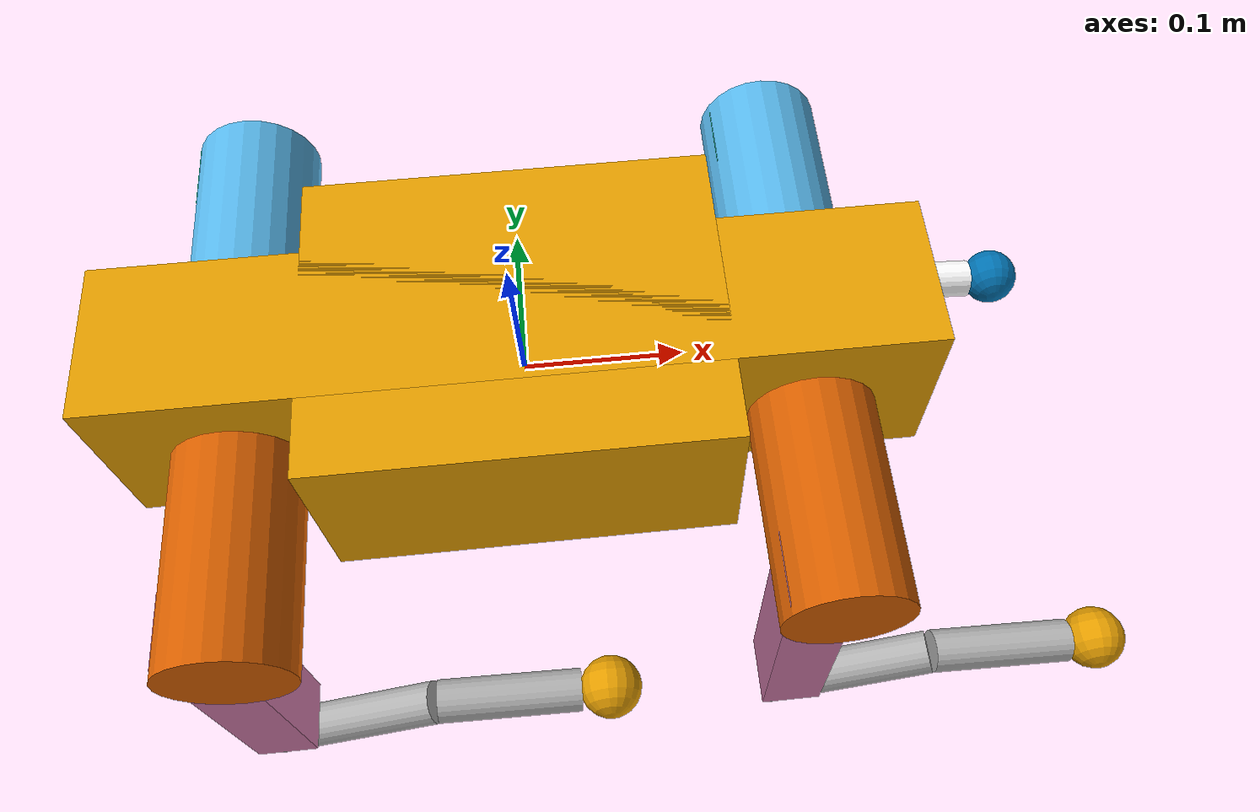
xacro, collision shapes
<?xml version="1.0"?>

<robot name="lite3"
    xmlns:xacro="http://www.ros.org/wiki/xacro">

    <xacro:include filename="$(find Lite3_urdf)/urdf/Lite3.urdf"/>
    <xacro:include filename="$(find Lite3_urdf)/xacro/gazebo.xacro"/>
    <xacro:include filename="$(find Lite3_urdf)/xacro/transmission.xacro"/>

    <link name="imu_link">
        <inertial>
            <origin xyz="0 0 0" rpy="0 0 0" />
            <mass value="0" />
            <inertia ixx="0" ixy="0" ixz="0" iyy="0" iyz="0" izz="0" />
        </inertial>
    </link>
    <joint name="imu_joint" type="fixed">
        <origin xyz="-0.02557 0 0.04232" rpy="0 0 0" />
        <parent link="TORSO" />
        <child link="imu_link" />
        <axis xyz="0 0 0" />
    </joint>

</robot>

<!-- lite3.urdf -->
<robot name="Lite3">
    <mujoco>
        <compiler meshdir="package://Lite3_urdf/meshes/" balanceinertia="false" discardvisual="false" fusestatic="false"/>
    </mujoco>
    <link name="TORSO">
        <inertial>
            <origin/>
            <mass value="5.6056"/>
            <inertia ixx="0.02456" ixy="0" ixz="0" iyy="0.05518" iyz="0" izz="0.07016"/>
        </inertial>
        <visual>
            <geometry>
                <mesh filename="package://Lite3_urdf/meshes/torso.STL"/>
            </geometry>
        </visual>
        <collision>
            <origin xyz="0 0 0.01"/>
            <geometry>
                <box size="0.5 0.1 0.12"/>
            </geometry>
        </collision>
        <collision>
            <origin xyz="0 0 0.01"/>
            <geometry>
                <box size="0.25 0.2 0.12"/>
            </geometry>
        </collision>
    </link>

    <!--!!!!!!!!!!!! Front Left Leg !!!!!!!!!!!!!!!!!!!!!!!!!!!!!!!!!!!!-->

    <link name="FL_HIP">
        <inertial>
            <origin xyz="-0.00601 -0.0066532 0.00034295"/>
            <mass value="0.550"/>
            <inertia ixx="0.0003949" ixy="0" ixz="0" iyy="0.0004028" iyz="0" izz="0.0004472"/>
        </inertial>
        <visual>
            <geometry>
                <mesh filename="package://Lite3_urdf/meshes/hip.STL" scale="1 1 1"/>
            </geometry>
        </visual>
        <collision>
            <origin xyz="0 0.05 0" rpy="1.57079632 0 0"/>
            <geometry>
                <cylinder length="0.15" radius="0.04"/>
            </geometry>
        </collision>
    </link>
    <joint name="FL_HipX_joint" type="revolute">
        <origin xyz="0.1745 0.062 0"/>
        <parent link="TORSO"/>
        <child link="FL_HIP"/>
        <axis xyz="-1 0 0"/>
        <limit lower="-0.523" upper="0.523" effort="24" velocity="26.2"/>
    </joint>
    <link name="FL_THIGH">
        <inertial>
            <origin xyz="-0.0052817 -0.014632 -0.042672"/>
            <mass value="0.86"/>
            <inertia ixx="0.005736" ixy="0" ixz="0" iyy="0.004960" iyz="0" izz="0.001436"/>
        </inertial>
        <visual>
            <geometry>
                <mesh filename="package://Lite3_urdf/meshes/thigh.STL"/>
            </geometry>
        </visual>
        <collision>
            <origin xyz="-0.015 0 -0.08" />
            <geometry>
                <box size="0.04 0.045 0.2"/>
            </geometry>
        </collision>
    </link>
    <joint name="FL_HipY_joint" type="revolute">
        <origin xyz="0 0.09735 0"/>
        <parent link="FL_HIP"/>
        <child link="FL_THIGH"/>
        <axis xyz="0 -1 0"/>
        <limit lower="-2.67" upper="0.314" effort="24" velocity="26.2"/>
    </joint>
    <link name="FL_SHANK">
        <inertial>
            <origin xyz="0.0064794 -1.4535E-06 -0.12157"/>
            <mass value="0.153"/>
            <inertia ixx="0.00089039" ixy="0" ixz="0" iyy="0.00090672" iyz="0" izz="3.1266E-05"/>
        </inertial>
        <visual>
            <geometry>
                <mesh filename="package://Lite3_urdf/meshes/shank.STL"/>
            </geometry>
            <material name="">
                <color rgba="1 1 1 1"/>
            </material>
        </visual>
        <collision>
            <origin xyz="0.005 0 -0.03" rpy="0 -0.2 0"/>
            <geometry>
                <cylinder length="0.12" radius="0.015"/>
            </geometry>
        </collision>
        <collision>
            <origin xyz="0.01 0 -0.14" rpy="0 0.15 0"/>
            <geometry>
                <cylinder length="0.10" radius="0.015"/>
            </geometry>
        </collision>
    </link>
    <joint name="FL_Knee_joint" type="revolute">
        <origin xyz="0 0 -0.20"/>
        <parent link="FL_THIGH"/>
        <child link="FL_SHANK"/>
        <axis xyz="0 -1 0"/>
        <limit lower="0.524" upper="2.792" effort="36" velocity="17.3"/>
    </joint>

    <link name="FL_FOOT">
        <collision>
            <origin rpy="1.57079632679 0 0" />
            <geometry>
                <sphere radius="0.022"/>
            </geometry>
        </collision>
        <inertial>
            <mass value="0.02"/>
            <inertia ixx="0" ixy="0" ixz="0" iyy="0" iyz="0" izz="0"/>
        </inertial>
    </link>

    <joint name="FL_Ankle" type="fixed" dont_collapse="true">
        <parent link="FL_SHANK"/>
        <child link="FL_FOOT"/>
        <origin xyz="0 0 -0.21012"/>
    </joint>

    <!--!!!!!!!!!!!! Front Right Leg !!!!!!!!!!!!!!!!!!!!!!!!!!!!!!!!!!!!-->
    <link name="FR_HIP">
        <inertial>
            <origin xyz="-0.010579 0.011358 0.00048546"/>
            <mass value="0.550"/>
            <inertia ixx="0.0004472" ixy="0" ixz="0" iyy="0.0004028" iyz="0" izz="0.0003949"/>
        </inertial>
        <visual>
            <geometry>
                <mesh filename="package://Lite3_urdf/meshes/hip.STL" scale="1 -1 1"/>
            </geometry>
        </visual>
        <collision>
            <origin xyz="0 -0.05 0" rpy="1.57079632 0 0"/>
            <geometry>
                <cylinder length="0.15" radius="0.04"/>
            </geometry>
        </collision>
    </link>
    <joint name="FR_HipX_joint" type="revolute">
        <origin xyz="0.1745 -0.062 0"/>
        <parent link="TORSO"/>
        <child link="FR_HIP"/>
        <axis xyz="-1 0 0"/>
        <limit lower="-0.523" upper="0.523" effort="24" velocity="26.2"/>
    </joint>
    <link name="FR_THIGH">
        <inertial>
            <origin xyz="-0.0039245 0.025256 -0.025146"/>
            <mass value="0.86"/>
            <!-- inertia ixx="0.00433" ixy="0.00001" ixz="0.00034" iyy="0.00403"  iyz="-0.0000186" izz="0.00143" -->
            <inertia ixx="0.005736" ixy="0" ixz="0" iyy="0.004960" iyz="0" izz="0.001436"/>
        </inertial>
        <visual>
            <geometry>
                <mesh filename="package://Lite3_urdf/meshes/thigh.STL" scale="1 -1 1"/>
            </geometry>
        </visual>
        <collision>
            <origin xyz="-0.015 0 -0.08" />
            <geometry>
                <box size="0.04 0.045 0.2"/>
            </geometry>
        </collision>
    </link>
    <joint name="FR_HipY_joint" type="revolute">
        <origin xyz="0 -0.09735 0"/>
        <parent link="FR_HIP"/>
        <child link="FR_THIGH"/>
        <axis xyz="0 -1 0"/>
        <limit lower="-2.67" upper="0.314" effort="24" velocity="26.2"/>
    </joint>
    <link name="FR_SHANK">
        <inertial>
            <origin xyz="0.0064794 -1.4552E-06 -0.12157"/>
            <mass value="0.153"/>
            <inertia ixx="0.00089039" ixy="0" ixz="0" iyy="0.00090672" iyz="0" izz="3.1266E-05"/>
        </inertial>
        <visual>
            <geometry>
                <mesh filename="package://Lite3_urdf/meshes/shank.STL"/>
            </geometry>
        </visual>
        <collision>
            <origin xyz="0.005 0 -0.03" rpy="0 -0.2 0"/>
            <geometry>
                <cylinder length="0.12" radius="0.015"/>
            </geometry>
        </collision>
        <collision>
            <origin xyz="0.01 0 -0.14" rpy="0 0.15 0"/>
            <geometry>
                <cylinder length="0.10" radius="0.015"/>
            </geometry>
        </collision>
    </link>
    <joint name="FR_Knee_joint" type="revolute">
        <origin xyz="0 0 -0.20"/>
        <parent link="FR_THIGH"/>
        <child link="FR_SHANK"/>
        <axis xyz="0 -1 0"/>
        <limit lower="0.524" upper="2.792" effort="36" velocity="17.3"/>
    </joint>

    <link name="FR_FOOT">
        <collision>
            <origin rpy="1.57079632679 0 0" />
            <geometry>
                <sphere radius="0.022"/>
            </geometry>
        </collision>
        <inertial>
            <mass value="0.02"/>
            <inertia ixx="0" ixy="0" ixz="0" iyy="0" iyz="0" izz="0"/>
        </inertial>
    </link>

    <joint name="FR_Ankle" type="fixed" dont_collapse="true">
        <parent link="FR_SHANK"/>
        <child link="FR_FOOT"/>
        <origin xyz="0 0 -0.21012"/>
    </joint>

    <!--!!!!!!!!!!!! Back Left Leg !!!!!!!!!!!!!!!!!!!!!!!!!!!!!!!!!!!!-->
    <link name="HL_HIP">
        <inertial>
            <origin xyz="0.010905 -0.012636 0.001051"/>
            <mass value="0.550"/>
            <inertia ixx="0.0003949" ixy="0" ixz="0" iyy="0.0004028" iyz="0" izz="0.0004472"/>
        </inertial>
        <visual>
            <geometry>
                <mesh filename="package://Lite3_urdf/meshes/hip.STL" scale="-1 1 1"/>
            </geometry>
        </visual>
        <collision>
            <origin xyz="0 0.05 0" rpy="1.57079632 0 0"/>
            <geometry>
                <cylinder length="0.15" radius="0.04"/>
            </geometry>
        </collision>
    </link>
    <joint name="HL_HipX_joint" type="revolute">
        <origin xyz="-0.1745 0.062 0"/>
        <parent link="TORSO"/>
        <child link="HL_HIP"/>
        <axis xyz="-1 0 0"/>
        <limit lower="-0.523" upper="0.523" effort="24" velocity="26.2"/>
    </joint>
    <link name="HL_THIGH">
        <inertial>
            <origin xyz="-0.0057137 -0.014631 -0.042453"/>
            <mass value="0.86"/>
            <inertia ixx="0.005736" ixy="0" ixz="0" iyy="0.004960" iyz="0" izz="0.001436"/>
        </inertial>
        <visual>
            <geometry>
                <mesh filename="package://Lite3_urdf/meshes/thigh.STL"/>
            </geometry>
        </visual>
        <collision>
            <origin xyz="-0.015 0 -0.08" />
            <geometry>
                <box size="0.04 0.045 0.2"/>
            </geometry>
        </collision>
    </link>
    <joint name="HL_HipY_joint" type="revolute">
        <origin xyz="0 0.09735 0"/>
        <parent link="HL_HIP"/>
        <child link="HL_THIGH"/>
        <axis xyz="0 -1 0"/>
        <limit lower="-2.67" upper="0.314" effort="24" velocity="26.2"/>
    </joint>
    <link name="HL_SHANK">
        <inertial>
            <origin xyz="0.0064794 -1.4558E-06 -0.12157"/>
            <mass value="0.153"/>
            <inertia ixx="0.00089039" ixy="0" ixz="0" iyy="0.00090672" iyz="0" izz="3.1266E-05"/>
        </inertial>
        <visual>
            <geometry>
                <mesh filename="package://Lite3_urdf/meshes/shank.STL"/>
            </geometry>
        </visual>
        <collision>
            <origin xyz="0.005 0 -0.03" rpy="0 -0.2 0"/>
            <geometry>
                <cylinder length="0.12" radius="0.015"/>
            </geometry>
        </collision>
        <collision>
            <origin xyz="0.01 0 -0.14" rpy="0 0.15 0"/>
            <geometry>
                <cylinder length="0.10" radius="0.015"/>
            </geometry>
        </collision>
    </link>
    <joint name="HL_Knee_joint" type="revolute">
        <origin xyz="0 0 -0.20"/>
        <parent link="HL_THIGH"/>
        <child link="HL_SHANK"/>
        <axis xyz="0 -1 0"/>
        <limit lower="0.524" upper="2.792" effort="36" velocity="17.3"/>
    </joint>

    <link name="HL_FOOT">
        <collision>
            <origin rpy="1.57079632679 0 0" />
            <geometry>
                <sphere radius="0.022"/>
            </geometry>
        </collision>
        <inertial>
            <mass value="0.02"/>
            <inertia ixx="0" ixy="0" ixz="0" iyy="0" iyz="0" izz="0"/>
        </inertial>
    </link>

    <joint name="HL_Ankle" type="fixed" dont_collapse="true">
        <parent link="HL_SHANK"/>
        <child link="HL_FOOT"/>
        <origin xyz="0 0 -0.21012"/>
    </joint>
    <!--!!!!!!!!!!!! Back Right Leg !!!!!!!!!!!!!!!!!!!!!!!!!!!!!!!!!!!!-->

    <link name="HR_HIP">
        <inertial>
            <origin xyz="0.010354 0.011423 0.00049498"/>
            <mass value="0.550"/>
            <inertia ixx="0.0004472" ixy="0" ixz="0" iyy="0.0004028" iyz="0" izz="0.0003949"/>
        </inertial>
        <visual>
            <geometry>
                <mesh filename="package://Lite3_urdf/meshes/hip.STL" scale="-1 -1 1"/>
            </geometry>
        </visual>
        <collision>
            <origin xyz="0 -0.05 0" rpy="1.57079632 0 0"/>
            <geometry>
                <cylinder length="0.15" radius="0.04"/>
            </geometry>
        </collision>
    </link>
    <joint name="HR_HipX_joint" type="revolute">
        <origin xyz="-0.1745 -0.062 0"/>
        <parent link="TORSO"/>
        <child link="HR_HIP"/>
        <axis xyz="-1 0 0"/>
        <limit lower="-0.523" upper="0.523" effort="24" velocity="26.2"/>
    </joint>
    <link name="HR_THIGH">
        <inertial>
            <origin xyz="-0.0031903 0.02526 -0.025617"/>
            <mass value="0.86"/>
            <inertia ixx="0.005736" ixy="0" ixz="0" iyy="0.004960" iyz="0" izz="0.001436"/>
        </inertial>
        <visual>
            <geometry>
                <mesh filename="package://Lite3_urdf/meshes/thigh.STL" scale="1 -1 1"/>
            </geometry>
        </visual>
        <collision>
            <origin xyz="-0.015 0 -0.08" />
            <geometry>
                <box size="0.04 0.045 0.2"/>
            </geometry>
        </collision>
    </link>
    <joint name="HR_HipY_joint" type="revolute">
        <origin xyz="0 -0.09735 0"/>
        <parent link="HR_HIP"/>
        <child link="HR_THIGH"/>
        <axis xyz="0 -1 0"/>
        <limit lower="-2.67" upper="0.314" effort="24" velocity="26.2"/>
    </joint>
    <link name="HR_SHANK">
        <inertial>
            <origin xyz="0.0064794 -1.4529E-06 -0.12157"/>
            <mass value="0.153"/>
            <inertia ixx="0.00089039" ixy="0" ixz="0" iyy="0.00090672" iyz="0" izz="3.1266E-05"/>
        </inertial>
        <visual>
            <geometry>
                <mesh filename="package://Lite3_urdf/meshes/shank.STL"/>
            </geometry>
        </visual>
        <collision>
            <origin xyz="0.005 0 -0.03" rpy="0 -0.2 0"/>
            <geometry>
                <cylinder length="0.12" radius="0.015"/>
            </geometry>
        </collision>
        <collision>
            <origin xyz="0.01 0 -0.14" rpy="0 0.15 0"/>
            <geometry>
                <cylinder length="0.10" radius="0.015"/>
            </geometry>
        </collision>
    </link>
    <joint name="HR_Knee_joint" type="revolute">
        <origin xyz="0 0 -0.20"/>
        <parent link="HR_THIGH"/>
        <child link="HR_SHANK"/>
        <axis xyz="0 -1 0"/>
        <limit lower="0.524" upper="2.792" effort="36" velocity="17.3"/>
    </joint>

    <link name="HR_FOOT">
        <collision>
            <origin rpy="1.57079632679 0 0" />
            <geometry>
                <sphere radius="0.022"/>
            </geometry>
        </collision>
        <inertial>
            <mass value="0.02"/>
            <inertia ixx="0" ixy="0" ixz="0" iyy="0" iyz="0" izz="0"/>
        </inertial>
    </link>

    <joint name="HR_Ankle" type="fixed" dont_collapse="true">
        <parent link="HR_SHANK"/>
        <child link="HR_FOOT"/>
        <origin xyz="0 0 -0.21012"/>
    </joint>
</robot>
